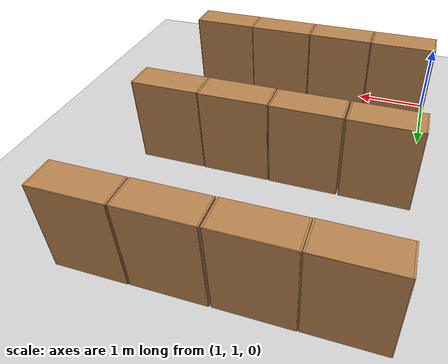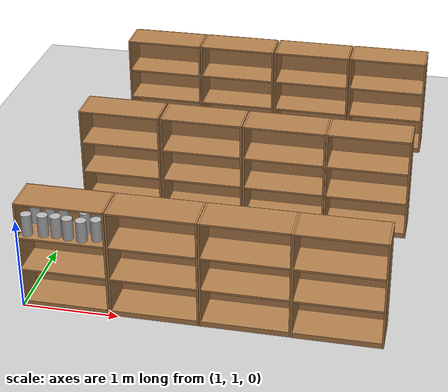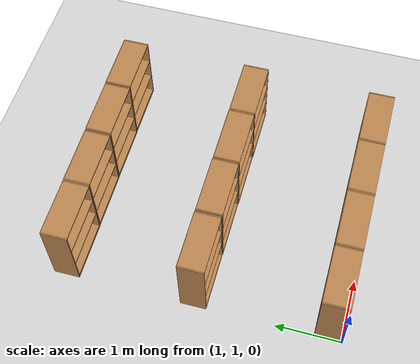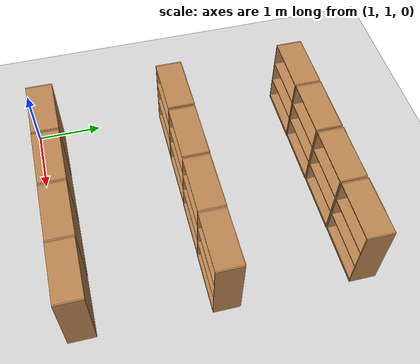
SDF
<sdf version="1.7">
 <world name="default">
  <model name="ground_plane">
   <static>1</static>
   <link name="link">
    <collision name="collision">
     <geometry><plane><normal>0 0 1</normal><size>100 100</size></plane></geometry>
     <surface>
      <contact><collide_bitmask>65535</collide_bitmask></contact>
      <friction><ode><mu>100</mu><mu2>50</mu2></ode></friction>
     </surface>
    </collision>
    <visual name="visual">
     <cast_shadows>0</cast_shadows>
     <geometry><plane><normal>0 0 1</normal><size>100 100</size></plane></geometry>
     <material>
      <script><uri>file://media/materials/scripts/gazebo.material</uri><name>Gazebo/Grey</name></script>
     </material>
    </visual>
   </link>
  </model>
  <model name="bookshelf">
   <static>1</static>
   <link name="link">
    <inertial><mass>1</mass></inertial>
    <collision name="back">
     <pose>0 0.005 0.6 0 -0 0</pose>
     <geometry><box><size>0.9 0.01 1.2</size></box></geometry>
    </collision>
    <visual name="visual1">
     <pose>0 0.005 0.6 0 -0 0</pose>
     <geometry><box><size>0.9 0.01 1.2</size></box></geometry>
     <material>
      <script><uri>file://media/materials/scripts/gazebo.material</uri><name>Gazebo/Wood</name></script>
     </material>
    </visual>
    <collision name="left_side">
     <pose>0.45 -0.195 0.6 0 -0 0</pose>
     <geometry><box><size>0.02 0.4 1.2</size></box></geometry>
    </collision>
    <visual name="visual2">
     <pose>0.45 -0.195 0.6 0 -0 0</pose>
     <geometry><box><size>0.02 0.4 1.2</size></box></geometry>
     <material>
      <script><uri>file://media/materials/scripts/gazebo.material</uri><name>Gazebo/Wood</name></script>
     </material>
    </visual>
    <collision name="right_side">
     <pose>-0.45 -0.195 0.6 0 -0 0</pose>
     <geometry><box><size>0.02 0.4 1.2</size></box></geometry>
    </collision>
    <visual name="visual3">
     <pose>-0.45 -0.195 0.6 0 -0 0</pose>
     <geometry><box><size>0.02 0.4 1.2</size></box></geometry>
     <material>
      <script><uri>file://media/materials/scripts/gazebo.material</uri><name>Gazebo/Wood</name></script>
     </material>
    </visual>
    <collision name="bottom">
     <pose>0 -0.195 0.03 0 -0 0</pose>
     <geometry><box><size>0.88 0.4 0.06</size></box></geometry>
    </collision>
    <visual name="visual4">
     <pose>0 -0.195 0.03 0 -0 0</pose>
     <geometry><box><size>0.88 0.4 0.06</size></box></geometry>
     <material>
      <script><uri>file://media/materials/scripts/gazebo.material</uri><name>Gazebo/Wood</name></script>
     </material>
    </visual>
    <collision name="top">
     <pose>0 -0.195 1.19 0 -0 0</pose>
     <geometry><box><size>0.88 0.4 0.02</size></box></geometry>
    </collision>
    <visual name="visual5">
     <pose>0 -0.195 1.19 0 -0 0</pose>
     <geometry><box><size>0.88 0.4 0.02</size></box></geometry>
     <material>
      <script><uri>file://media/materials/scripts/gazebo.material</uri><name>Gazebo/Wood</name></script>
     </material>
    </visual>
    <collision name="low_shelf">
     <pose>0 -0.195 0.43 0 -0 0</pose>
     <geometry><box><size>0.88 0.4 0.02</size></box></geometry>
    </collision>
    <visual name="visual6">
     <pose>0 -0.195 0.43 0 -0 0</pose>
     <geometry><box><size>0.88 0.4 0.02</size></box></geometry>
     <material>
      <script><uri>file://media/materials/scripts/gazebo.material</uri><name>Gazebo/Wood</name></script>
     </material>
    </visual>
    <collision name="high_shelf">
     <pose>0 -0.195 0.8 0 -0 0</pose>
     <geometry><box><size>0.88 0.4 0.02</size></box></geometry>
    </collision>
    <visual name="visual7">
     <pose>0 -0.195 0.8 0 -0 0</pose>
     <geometry><box><size>0.88 0.4 0.02</size></box></geometry>
     <material>
      <script><uri>file://media/materials/scripts/gazebo.material</uri><name>Gazebo/Wood</name></script>
     </material>
    </visual>
   </link>
   <pose>1.45184 3.43534 0 0 -0 0</pose>
  </model>
  <model name="bookshelf_0">
   <static>1</static>
   <link name="link">
    <inertial><mass>1</mass></inertial>
    <collision name="back">
     <pose>0 0.005 0.6 0 -0 0</pose>
     <geometry><box><size>0.9 0.01 1.2</size></box></geometry>
    </collision>
    <visual name="visual1">
     <pose>0 0.005 0.6 0 -0 0</pose>
     <geometry><box><size>0.9 0.01 1.2</size></box></geometry>
     <material>
      <script><uri>file://media/materials/scripts/gazebo.material</uri><name>Gazebo/Wood</name></script>
     </material>
    </visual>
    <collision name="left_side">
     <pose>0.45 -0.195 0.6 0 -0 0</pose>
     <geometry><box><size>0.02 0.4 1.2</size></box></geometry>
    </collision>
    <visual name="visual2">
     <pose>0.45 -0.195 0.6 0 -0 0</pose>
     <geometry><box><size>0.02 0.4 1.2</size></box></geometry>
     <material>
      <script><uri>file://media/materials/scripts/gazebo.material</uri><name>Gazebo/Wood</name></script>
     </material>
    </visual>
    <collision name="right_side">
     <pose>-0.45 -0.195 0.6 0 -0 0</pose>
     <geometry><box><size>0.02 0.4 1.2</size></box></geometry>
    </collision>
    <visual name="visual3">
     <pose>-0.45 -0.195 0.6 0 -0 0</pose>
     <geometry><box><size>0.02 0.4 1.2</size></box></geometry>
     <material>
      <script><uri>file://media/materials/scripts/gazebo.material</uri><name>Gazebo/Wood</name></script>
     </material>
    </visual>
    <collision name="bottom">
     <pose>0 -0.195 0.03 0 -0 0</pose>
     <geometry><box><size>0.88 0.4 0.06</size></box></geometry>
    </collision>
    <visual name="visual4">
     <pose>0 -0.195 0.03 0 -0 0</pose>
     <geometry><box><size>0.88 0.4 0.06</size></box></geometry>
     <material>
      <script><uri>file://media/materials/scripts/gazebo.material</uri><name>Gazebo/Wood</name></script>
     </material>
    </visual>
    <collision name="top">
     <pose>0 -0.195 1.19 0 -0 0</pose>
     <geometry><box><size>0.88 0.4 0.02</size></box></geometry>
    </collision>
    <visual name="visual5">
     <pose>0 -0.195 1.19 0 -0 0</pose>
     <geometry><box><size>0.88 0.4 0.02</size></box></geometry>
     <material>
      <script><uri>file://media/materials/scripts/gazebo.material</uri><name>Gazebo/Wood</name></script>
     </material>
    </visual>
    <collision name="low_shelf">
     <pose>0 -0.195 0.43 0 -0 0</pose>
     <geometry><box><size>0.88 0.4 0.02</size></box></geometry>
    </collision>
    <visual name="visual6">
     <pose>0 -0.195 0.43 0 -0 0</pose>
     <geometry><box><size>0.88 0.4 0.02</size></box></geometry>
     <material>
      <script><uri>file://media/materials/scripts/gazebo.material</uri><name>Gazebo/Wood</name></script>
     </material>
    </visual>
    <collision name="high_shelf">
     <pose>0 -0.195 0.8 0 -0 0</pose>
     <geometry><box><size>0.88 0.4 0.02</size></box></geometry>
    </collision>
    <visual name="visual7">
     <pose>0 -0.195 0.8 0 -0 0</pose>
     <geometry><box><size>0.88 0.4 0.02</size></box></geometry>
     <material>
      <script><uri>file://media/materials/scripts/gazebo.material</uri><name>Gazebo/Wood</name></script>
     </material>
    </visual>
   </link>
   <pose>2.39092 3.43134 0 0 -0 0</pose>
  </model>
  <model name="bookshelf_1">
   <static>1</static>
   <link name="link">
    <inertial><mass>1</mass></inertial>
    <collision name="back">
     <pose>0 0.005 0.6 0 -0 0</pose>
     <geometry><box><size>0.9 0.01 1.2</size></box></geometry>
    </collision>
    <visual name="visual1">
     <pose>0 0.005 0.6 0 -0 0</pose>
     <geometry><box><size>0.9 0.01 1.2</size></box></geometry>
     <material>
      <script><uri>file://media/materials/scripts/gazebo.material</uri><name>Gazebo/Wood</name></script>
     </material>
    </visual>
    <collision name="left_side">
     <pose>0.45 -0.195 0.6 0 -0 0</pose>
     <geometry><box><size>0.02 0.4 1.2</size></box></geometry>
    </collision>
    <visual name="visual2">
     <pose>0.45 -0.195 0.6 0 -0 0</pose>
     <geometry><box><size>0.02 0.4 1.2</size></box></geometry>
     <material>
      <script><uri>file://media/materials/scripts/gazebo.material</uri><name>Gazebo/Wood</name></script>
     </material>
    </visual>
    <collision name="right_side">
     <pose>-0.45 -0.195 0.6 0 -0 0</pose>
     <geometry><box><size>0.02 0.4 1.2</size></box></geometry>
    </collision>
    <visual name="visual3">
     <pose>-0.45 -0.195 0.6 0 -0 0</pose>
     <geometry><box><size>0.02 0.4 1.2</size></box></geometry>
     <material>
      <script><uri>file://media/materials/scripts/gazebo.material</uri><name>Gazebo/Wood</name></script>
     </material>
    </visual>
    <collision name="bottom">
     <pose>0 -0.195 0.03 0 -0 0</pose>
     <geometry><box><size>0.88 0.4 0.06</size></box></geometry>
    </collision>
    <visual name="visual4">
     <pose>0 -0.195 0.03 0 -0 0</pose>
     <geometry><box><size>0.88 0.4 0.06</size></box></geometry>
     <material>
      <script><uri>file://media/materials/scripts/gazebo.material</uri><name>Gazebo/Wood</name></script>
     </material>
    </visual>
    <collision name="top">
     <pose>0 -0.195 1.19 0 -0 0</pose>
     <geometry><box><size>0.88 0.4 0.02</size></box></geometry>
    </collision>
    <visual name="visual5">
     <pose>0 -0.195 1.19 0 -0 0</pose>
     <geometry><box><size>0.88 0.4 0.02</size></box></geometry>
     <material>
      <script><uri>file://media/materials/scripts/gazebo.material</uri><name>Gazebo/Wood</name></script>
     </material>
    </visual>
    <collision name="low_shelf">
     <pose>0 -0.195 0.43 0 -0 0</pose>
     <geometry><box><size>0.88 0.4 0.02</size></box></geometry>
    </collision>
    <visual name="visual6">
     <pose>0 -0.195 0.43 0 -0 0</pose>
     <geometry><box><size>0.88 0.4 0.02</size></box></geometry>
     <material>
      <script><uri>file://media/materials/scripts/gazebo.material</uri><name>Gazebo/Wood</name></script>
     </material>
    </visual>
    <collision name="high_shelf">
     <pose>0 -0.195 0.8 0 -0 0</pose>
     <geometry><box><size>0.88 0.4 0.02</size></box></geometry>
    </collision>
    <visual name="visual7">
     <pose>0 -0.195 0.8 0 -0 0</pose>
     <geometry><box><size>0.88 0.4 0.02</size></box></geometry>
     <material>
      <script><uri>file://media/materials/scripts/gazebo.material</uri><name>Gazebo/Wood</name></script>
     </material>
    </visual>
   </link>
   <pose>3.31925 3.42546 0 0 -0 0</pose>
  </model>
  <model name="bookshelf_2">
   <static>1</static>
   <link name="link">
    <inertial><mass>1</mass></inertial>
    <collision name="back">
     <pose>0 0.005 0.6 0 -0 0</pose>
     <geometry><box><size>0.9 0.01 1.2</size></box></geometry>
    </collision>
    <visual name="visual1">
     <pose>0 0.005 0.6 0 -0 0</pose>
     <geometry><box><size>0.9 0.01 1.2</size></box></geometry>
     <material>
      <script><uri>file://media/materials/scripts/gazebo.material</uri><name>Gazebo/Wood</name></script>
     </material>
    </visual>
    <collision name="left_side">
     <pose>0.45 -0.195 0.6 0 -0 0</pose>
     <geometry><box><size>0.02 0.4 1.2</size></box></geometry>
    </collision>
    <visual name="visual2">
     <pose>0.45 -0.195 0.6 0 -0 0</pose>
     <geometry><box><size>0.02 0.4 1.2</size></box></geometry>
     <material>
      <script><uri>file://media/materials/scripts/gazebo.material</uri><name>Gazebo/Wood</name></script>
     </material>
    </visual>
    <collision name="right_side">
     <pose>-0.45 -0.195 0.6 0 -0 0</pose>
     <geometry><box><size>0.02 0.4 1.2</size></box></geometry>
    </collision>
    <visual name="visual3">
     <pose>-0.45 -0.195 0.6 0 -0 0</pose>
     <geometry><box><size>0.02 0.4 1.2</size></box></geometry>
     <material>
      <script><uri>file://media/materials/scripts/gazebo.material</uri><name>Gazebo/Wood</name></script>
     </material>
    </visual>
    <collision name="bottom">
     <pose>0 -0.195 0.03 0 -0 0</pose>
     <geometry><box><size>0.88 0.4 0.06</size></box></geometry>
    </collision>
    <visual name="visual4">
     <pose>0 -0.195 0.03 0 -0 0</pose>
     <geometry><box><size>0.88 0.4 0.06</size></box></geometry>
     <material>
      <script><uri>file://media/materials/scripts/gazebo.material</uri><name>Gazebo/Wood</name></script>
     </material>
    </visual>
    <collision name="top">
     <pose>0 -0.195 1.19 0 -0 0</pose>
     <geometry><box><size>0.88 0.4 0.02</size></box></geometry>
    </collision>
    <visual name="visual5">
     <pose>0 -0.195 1.19 0 -0 0</pose>
     <geometry><box><size>0.88 0.4 0.02</size></box></geometry>
     <material>
      <script><uri>file://media/materials/scripts/gazebo.material</uri><name>Gazebo/Wood</name></script>
     </material>
    </visual>
    <collision name="low_shelf">
     <pose>0 -0.195 0.43 0 -0 0</pose>
     <geometry><box><size>0.88 0.4 0.02</size></box></geometry>
    </collision>
    <visual name="visual6">
     <pose>0 -0.195 0.43 0 -0 0</pose>
     <geometry><box><size>0.88 0.4 0.02</size></box></geometry>
     <material>
      <script><uri>file://media/materials/scripts/gazebo.material</uri><name>Gazebo/Wood</name></script>
     </material>
    </visual>
    <collision name="high_shelf">
     <pose>0 -0.195 0.8 0 -0 0</pose>
     <geometry><box><size>0.88 0.4 0.02</size></box></geometry>
    </collision>
    <visual name="visual7">
     <pose>0 -0.195 0.8 0 -0 0</pose>
     <geometry><box><size>0.88 0.4 0.02</size></box></geometry>
     <material>
      <script><uri>file://media/materials/scripts/gazebo.material</uri><name>Gazebo/Wood</name></script>
     </material>
    </visual>
   </link>
   <pose>4.24207 3.42066 0 0 -0 0</pose>
  </model>
  <model name="bookshelf_3">
   <static>1</static>
   <link name="link">
    <inertial><mass>1</mass></inertial>
    <collision name="back">
     <pose>0 0.005 0.6 0 -0 0</pose>
     <geometry><box><size>0.9 0.01 1.2</size></box></geometry>
    </collision>
    <visual name="visual1">
     <pose>0 0.005 0.6 0 -0 0</pose>
     <geometry><box><size>0.9 0.01 1.2</size></box></geometry>
     <material>
      <script><uri>file://media/materials/scripts/gazebo.material</uri><name>Gazebo/Wood</name></script>
     </material>
    </visual>
    <collision name="left_side">
     <pose>0.45 -0.195 0.6 0 -0 0</pose>
     <geometry><box><size>0.02 0.4 1.2</size></box></geometry>
    </collision>
    <visual name="visual2">
     <pose>0.45 -0.195 0.6 0 -0 0</pose>
     <geometry><box><size>0.02 0.4 1.2</size></box></geometry>
     <material>
      <script><uri>file://media/materials/scripts/gazebo.material</uri><name>Gazebo/Wood</name></script>
     </material>
    </visual>
    <collision name="right_side">
     <pose>-0.45 -0.195 0.6 0 -0 0</pose>
     <geometry><box><size>0.02 0.4 1.2</size></box></geometry>
    </collision>
    <visual name="visual3">
     <pose>-0.45 -0.195 0.6 0 -0 0</pose>
     <geometry><box><size>0.02 0.4 1.2</size></box></geometry>
     <material>
      <script><uri>file://media/materials/scripts/gazebo.material</uri><name>Gazebo/Wood</name></script>
     </material>
    </visual>
    <collision name="bottom">
     <pose>0 -0.195 0.03 0 -0 0</pose>
     <geometry><box><size>0.88 0.4 0.06</size></box></geometry>
    </collision>
    <visual name="visual4">
     <pose>0 -0.195 0.03 0 -0 0</pose>
     <geometry><box><size>0.88 0.4 0.06</size></box></geometry>
     <material>
      <script><uri>file://media/materials/scripts/gazebo.material</uri><name>Gazebo/Wood</name></script>
     </material>
    </visual>
    <collision name="top">
     <pose>0 -0.195 1.19 0 -0 0</pose>
     <geometry><box><size>0.88 0.4 0.02</size></box></geometry>
    </collision>
    <visual name="visual5">
     <pose>0 -0.195 1.19 0 -0 0</pose>
     <geometry><box><size>0.88 0.4 0.02</size></box></geometry>
     <material>
      <script><uri>file://media/materials/scripts/gazebo.material</uri><name>Gazebo/Wood</name></script>
     </material>
    </visual>
    <collision name="low_shelf">
     <pose>0 -0.195 0.43 0 -0 0</pose>
     <geometry><box><size>0.88 0.4 0.02</size></box></geometry>
    </collision>
    <visual name="visual6">
     <pose>0 -0.195 0.43 0 -0 0</pose>
     <geometry><box><size>0.88 0.4 0.02</size></box></geometry>
     <material>
      <script><uri>file://media/materials/scripts/gazebo.material</uri><name>Gazebo/Wood</name></script>
     </material>
    </visual>
    <collision name="high_shelf">
     <pose>0 -0.195 0.8 0 -0 0</pose>
     <geometry><box><size>0.88 0.4 0.02</size></box></geometry>
    </collision>
    <visual name="visual7">
     <pose>0 -0.195 0.8 0 -0 0</pose>
     <geometry><box><size>0.88 0.4 0.02</size></box></geometry>
     <material>
      <script><uri>file://media/materials/scripts/gazebo.material</uri><name>Gazebo/Wood</name></script>
     </material>
    </visual>
   </link>
   <pose>1.4441 1.40563 0 -0.000728 0 0</pose>
  </model>
  <model name="bookshelf_4">
   <static>1</static>
   <link name="link">
    <inertial><mass>1</mass></inertial>
    <collision name="back">
     <pose>0 0.005 0.6 0 -0 0</pose>
     <geometry><box><size>0.9 0.01 1.2</size></box></geometry>
    </collision>
    <visual name="visual1">
     <pose>0 0.005 0.6 0 -0 0</pose>
     <geometry><box><size>0.9 0.01 1.2</size></box></geometry>
     <material>
      <script><uri>file://media/materials/scripts/gazebo.material</uri><name>Gazebo/Wood</name></script>
     </material>
    </visual>
    <collision name="left_side">
     <pose>0.45 -0.195 0.6 0 -0 0</pose>
     <geometry><box><size>0.02 0.4 1.2</size></box></geometry>
    </collision>
    <visual name="visual2">
     <pose>0.45 -0.195 0.6 0 -0 0</pose>
     <geometry><box><size>0.02 0.4 1.2</size></box></geometry>
     <material>
      <script><uri>file://media/materials/scripts/gazebo.material</uri><name>Gazebo/Wood</name></script>
     </material>
    </visual>
    <collision name="right_side">
     <pose>-0.45 -0.195 0.6 0 -0 0</pose>
     <geometry><box><size>0.02 0.4 1.2</size></box></geometry>
    </collision>
    <visual name="visual3">
     <pose>-0.45 -0.195 0.6 0 -0 0</pose>
     <geometry><box><size>0.02 0.4 1.2</size></box></geometry>
     <material>
      <script><uri>file://media/materials/scripts/gazebo.material</uri><name>Gazebo/Wood</name></script>
     </material>
    </visual>
    <collision name="bottom">
     <pose>0 -0.195 0.03 0 -0 0</pose>
     <geometry><box><size>0.88 0.4 0.06</size></box></geometry>
    </collision>
    <visual name="visual4">
     <pose>0 -0.195 0.03 0 -0 0</pose>
     <geometry><box><size>0.88 0.4 0.06</size></box></geometry>
     <material>
      <script><uri>file://media/materials/scripts/gazebo.material</uri><name>Gazebo/Wood</name></script>
     </material>
    </visual>
    <collision name="top">
     <pose>0 -0.195 1.19 0 -0 0</pose>
     <geometry><box><size>0.88 0.4 0.02</size></box></geometry>
    </collision>
    <visual name="visual5">
     <pose>0 -0.195 1.19 0 -0 0</pose>
     <geometry><box><size>0.88 0.4 0.02</size></box></geometry>
     <material>
      <script><uri>file://media/materials/scripts/gazebo.material</uri><name>Gazebo/Wood</name></script>
     </material>
    </visual>
    <collision name="low_shelf">
     <pose>0 -0.195 0.43 0 -0 0</pose>
     <geometry><box><size>0.88 0.4 0.02</size></box></geometry>
    </collision>
    <visual name="visual6">
     <pose>0 -0.195 0.43 0 -0 0</pose>
     <geometry><box><size>0.88 0.4 0.02</size></box></geometry>
     <material>
      <script><uri>file://media/materials/scripts/gazebo.material</uri><name>Gazebo/Wood</name></script>
     </material>
    </visual>
    <collision name="high_shelf">
     <pose>0 -0.195 0.8 0 -0 0</pose>
     <geometry><box><size>0.88 0.4 0.02</size></box></geometry>
    </collision>
    <visual name="visual7">
     <pose>0 -0.195 0.8 0 -0 0</pose>
     <geometry><box><size>0.88 0.4 0.02</size></box></geometry>
     <material>
      <script><uri>file://media/materials/scripts/gazebo.material</uri><name>Gazebo/Wood</name></script>
     </material>
    </visual>
   </link>
   <pose>2.36984 1.40261 0 0 -0 0</pose>
  </model>
  <model name="bookshelf_5">
   <static>1</static>
   <link name="link">
    <inertial><mass>1</mass></inertial>
    <collision name="back">
     <pose>0 0.005 0.6 0 -0 0</pose>
     <geometry><box><size>0.9 0.01 1.2</size></box></geometry>
    </collision>
    <visual name="visual1">
     <pose>0 0.005 0.6 0 -0 0</pose>
     <geometry><box><size>0.9 0.01 1.2</size></box></geometry>
     <material>
      <script><uri>file://media/materials/scripts/gazebo.material</uri><name>Gazebo/Wood</name></script>
     </material>
    </visual>
    <collision name="left_side">
     <pose>0.45 -0.195 0.6 0 -0 0</pose>
     <geometry><box><size>0.02 0.4 1.2</size></box></geometry>
    </collision>
    <visual name="visual2">
     <pose>0.45 -0.195 0.6 0 -0 0</pose>
     <geometry><box><size>0.02 0.4 1.2</size></box></geometry>
     <material>
      <script><uri>file://media/materials/scripts/gazebo.material</uri><name>Gazebo/Wood</name></script>
     </material>
    </visual>
    <collision name="right_side">
     <pose>-0.45 -0.195 0.6 0 -0 0</pose>
     <geometry><box><size>0.02 0.4 1.2</size></box></geometry>
    </collision>
    <visual name="visual3">
     <pose>-0.45 -0.195 0.6 0 -0 0</pose>
     <geometry><box><size>0.02 0.4 1.2</size></box></geometry>
     <material>
      <script><uri>file://media/materials/scripts/gazebo.material</uri><name>Gazebo/Wood</name></script>
     </material>
    </visual>
    <collision name="bottom">
     <pose>0 -0.195 0.03 0 -0 0</pose>
     <geometry><box><size>0.88 0.4 0.06</size></box></geometry>
    </collision>
    <visual name="visual4">
     <pose>0 -0.195 0.03 0 -0 0</pose>
     <geometry><box><size>0.88 0.4 0.06</size></box></geometry>
     <material>
      <script><uri>file://media/materials/scripts/gazebo.material</uri><name>Gazebo/Wood</name></script>
     </material>
    </visual>
    <collision name="top">
     <pose>0 -0.195 1.19 0 -0 0</pose>
     <geometry><box><size>0.88 0.4 0.02</size></box></geometry>
    </collision>
    <visual name="visual5">
     <pose>0 -0.195 1.19 0 -0 0</pose>
     <geometry><box><size>0.88 0.4 0.02</size></box></geometry>
     <material>
      <script><uri>file://media/materials/scripts/gazebo.material</uri><name>Gazebo/Wood</name></script>
     </material>
    </visual>
    <collision name="low_shelf">
     <pose>0 -0.195 0.43 0 -0 0</pose>
     <geometry><box><size>0.88 0.4 0.02</size></box></geometry>
    </collision>
    <visual name="visual6">
     <pose>0 -0.195 0.43 0 -0 0</pose>
     <geometry><box><size>0.88 0.4 0.02</size></box></geometry>
     <material>
      <script><uri>file://media/materials/scripts/gazebo.material</uri><name>Gazebo/Wood</name></script>
     </material>
    </visual>
    <collision name="high_shelf">
     <pose>0 -0.195 0.8 0 -0 0</pose>
     <geometry><box><size>0.88 0.4 0.02</size></box></geometry>
    </collision>
    <visual name="visual7">
     <pose>0 -0.195 0.8 0 -0 0</pose>
     <geometry><box><size>0.88 0.4 0.02</size></box></geometry>
     <material>
      <script><uri>file://media/materials/scripts/gazebo.material</uri><name>Gazebo/Wood</name></script>
     </material>
    </visual>
   </link>
   <pose>3.29308 1.40142 0 0 -0 0</pose>
  </model>
  <model name="bookshelf_6">
   <static>1</static>
   <link name="link">
    <inertial><mass>1</mass></inertial>
    <collision name="back">
     <pose>0 0.005 0.6 0 -0 0</pose>
     <geometry><box><size>0.9 0.01 1.2</size></box></geometry>
    </collision>
    <visual name="visual1">
     <pose>0 0.005 0.6 0 -0 0</pose>
     <geometry><box><size>0.9 0.01 1.2</size></box></geometry>
     <material>
      <script><uri>file://media/materials/scripts/gazebo.material</uri><name>Gazebo/Wood</name></script>
     </material>
    </visual>
    <collision name="left_side">
     <pose>0.45 -0.195 0.6 0 -0 0</pose>
     <geometry><box><size>0.02 0.4 1.2</size></box></geometry>
    </collision>
    <visual name="visual2">
     <pose>0.45 -0.195 0.6 0 -0 0</pose>
     <geometry><box><size>0.02 0.4 1.2</size></box></geometry>
     <material>
      <script><uri>file://media/materials/scripts/gazebo.material</uri><name>Gazebo/Wood</name></script>
     </material>
    </visual>
    <collision name="right_side">
     <pose>-0.45 -0.195 0.6 0 -0 0</pose>
     <geometry><box><size>0.02 0.4 1.2</size></box></geometry>
    </collision>
    <visual name="visual3">
     <pose>-0.45 -0.195 0.6 0 -0 0</pose>
     <geometry><box><size>0.02 0.4 1.2</size></box></geometry>
     <material>
      <script><uri>file://media/materials/scripts/gazebo.material</uri><name>Gazebo/Wood</name></script>
     </material>
    </visual>
    <collision name="bottom">
     <pose>0 -0.195 0.03 0 -0 0</pose>
     <geometry><box><size>0.88 0.4 0.06</size></box></geometry>
    </collision>
    <visual name="visual4">
     <pose>0 -0.195 0.03 0 -0 0</pose>
     <geometry><box><size>0.88 0.4 0.06</size></box></geometry>
     <material>
      <script><uri>file://media/materials/scripts/gazebo.material</uri><name>Gazebo/Wood</name></script>
     </material>
    </visual>
    <collision name="top">
     <pose>0 -0.195 1.19 0 -0 0</pose>
     <geometry><box><size>0.88 0.4 0.02</size></box></geometry>
    </collision>
    <visual name="visual5">
     <pose>0 -0.195 1.19 0 -0 0</pose>
     <geometry><box><size>0.88 0.4 0.02</size></box></geometry>
     <material>
      <script><uri>file://media/materials/scripts/gazebo.material</uri><name>Gazebo/Wood</name></script>
     </material>
    </visual>
    <collision name="low_shelf">
     <pose>0 -0.195 0.43 0 -0 0</pose>
     <geometry><box><size>0.88 0.4 0.02</size></box></geometry>
    </collision>
    <visual name="visual6">
     <pose>0 -0.195 0.43 0 -0 0</pose>
     <geometry><box><size>0.88 0.4 0.02</size></box></geometry>
     <material>
      <script><uri>file://media/materials/scripts/gazebo.material</uri><name>Gazebo/Wood</name></script>
     </material>
    </visual>
    <collision name="high_shelf">
     <pose>0 -0.195 0.8 0 -0 0</pose>
     <geometry><box><size>0.88 0.4 0.02</size></box></geometry>
    </collision>
    <visual name="visual7">
     <pose>0 -0.195 0.8 0 -0 0</pose>
     <geometry><box><size>0.88 0.4 0.02</size></box></geometry>
     <material>
      <script><uri>file://media/materials/scripts/gazebo.material</uri><name>Gazebo/Wood</name></script>
     </material>
    </visual>
   </link>
   <pose>4.20808 1.39756 0 0 -0 0</pose>
  </model>
  <model name="beer">
   <link name="link">
    <pose>0 0 0.115 0 -0 0</pose>
    <inertial>
     <mass>0.39</mass>
     <inertia><ixx>0.00058</ixx><ixy>0</ixy><ixz>0</ixz><iyy>0.00058</iyy><iyz>0</iyz><izz>0.00019</izz></inertia>
    </inertial>
    <collision name="collision">
     <geometry><cylinder><radius>0.055</radius><length>0.23</length></cylinder></geometry>
    </collision>
    <visual name="visual">
     <geometry><cylinder><radius>0.055</radius><length>0.23</length></cylinder></geometry>
     <material>
      <script>
       <uri>model://beer/materials/scripts</uri>
       <uri>model://beer/materials/textures</uri>
       <name>Beer/Diffuse</name>
      </script>
     </material>
    </visual>
   </link>
   <pose>1.07644 1.3497 0.810032 -0.000731 -1e-05 0.001882</pose>
  </model>
  <model name="beer_0">
   <link name="link">
    <pose>0 0 0.115 0 -0 0</pose>
    <inertial>
     <mass>0.39</mass>
     <inertia><ixx>0.00058</ixx><ixy>0</ixy><ixz>0</ixz><iyy>0.00058</iyy><iyz>0</iyz><izz>0.00019</izz></inertia>
    </inertial>
    <collision name="collision">
     <geometry><cylinder><radius>0.055</radius><length>0.23</length></cylinder></geometry>
    </collision>
    <visual name="visual">
     <geometry><cylinder><radius>0.055</radius><length>0.23</length></cylinder></geometry>
     <material>
      <script>
       <uri>model://beer/materials/scripts</uri>
       <uri>model://beer/materials/textures</uri>
       <name>Beer/Diffuse</name>
      </script>
     </material>
    </visual>
   </link>
   <pose>1.07637 1.09987 0.810226 -0.00078 -3e-06 0.001772</pose>
  </model>
  <model name="beer_1">
   <link name="link">
    <pose>0 0 0.115 0 -0 0</pose>
    <inertial>
     <mass>0.39</mass>
     <inertia><ixx>0.00058</ixx><ixy>0</ixy><ixz>0</ixz><iyy>0.00058</iyy><iyz>0</iyz><izz>0.00019</izz></inertia>
    </inertial>
    <collision name="collision">
     <geometry><cylinder><radius>0.055</radius><length>0.23</length></cylinder></geometry>
    </collision>
    <visual name="visual">
     <geometry><cylinder><radius>0.055</radius><length>0.23</length></cylinder></geometry>
     <material>
      <script>
       <uri>model://beer/materials/scripts</uri>
       <uri>model://beer/materials/textures</uri>
       <name>Beer/Diffuse</name>
      </script>
     </material>
    </visual>
   </link>
   <pose>1.23236 1.33918 0.810039 -0.000739 -2e-06 0.001984</pose>
  </model>
  <model name="beer_2">
   <link name="link">
    <pose>0 0 0.115 0 -0 0</pose>
    <inertial>
     <mass>0.39</mass>
     <inertia><ixx>0.00058</ixx><ixy>0</ixy><ixz>0</ixz><iyy>0.00058</iyy><iyz>0</iyz><izz>0.00019</izz></inertia>
    </inertial>
    <collision name="collision">
     <geometry><cylinder><radius>0.055</radius><length>0.23</length></cylinder></geometry>
    </collision>
    <visual name="visual">
     <geometry><cylinder><radius>0.055</radius><length>0.23</length></cylinder></geometry>
     <material>
      <script>
       <uri>model://beer/materials/scripts</uri>
       <uri>model://beer/materials/textures</uri>
       <name>Beer/Diffuse</name>
      </script>
     </material>
    </visual>
   </link>
   <pose>1.24062 1.1132 0.810215 -0.000755 0 0.001012</pose>
  </model>
  <model name="beer_3">
   <link name="link">
    <pose>0 0 0.115 0 -0 0</pose>
    <inertial>
     <mass>0.39</mass>
     <inertia><ixx>0.00058</ixx><ixy>0</ixy><ixz>0</ixz><iyy>0.00058</iyy><iyz>0</iyz><izz>0.00019</izz></inertia>
    </inertial>
    <collision name="collision">
     <geometry><cylinder><radius>0.055</radius><length>0.23</length></cylinder></geometry>
    </collision>
    <visual name="visual">
     <geometry><cylinder><radius>0.055</radius><length>0.23</length></cylinder></geometry>
     <material>
      <script>
       <uri>model://beer/materials/scripts</uri>
       <uri>model://beer/materials/textures</uri>
       <name>Beer/Diffuse</name>
      </script>
     </material>
    </visual>
   </link>
   <pose>1.37254 1.34323 0.810046 -0.000727 1e-06 0.00156</pose>
  </model>
  <model name="beer_4">
   <link name="link">
    <pose>0 0 0.115 0 -0 0</pose>
    <inertial>
     <mass>0.39</mass>
     <inertia><ixx>0.00058</ixx><ixy>0</ixy><ixz>0</ixz><iyy>0.00058</iyy><iyz>0</iyz><izz>0.00019</izz></inertia>
    </inertial>
    <collision name="collision">
     <geometry><cylinder><radius>0.055</radius><length>0.23</length></cylinder></geometry>
    </collision>
    <visual name="visual">
     <geometry><cylinder><radius>0.055</radius><length>0.23</length></cylinder></geometry>
     <material>
      <script>
       <uri>model://beer/materials/scripts</uri>
       <uri>model://beer/materials/textures</uri>
       <name>Beer/Diffuse</name>
      </script>
     </material>
    </visual>
   </link>
   <pose>1.37423 1.12022 0.810213 -0.000824 -4e-06 0.00107</pose>
  </model>
  <model name="beer_7">
   <link name="link">
    <pose>0 0 0.115 0 -0 0</pose>
    <inertial>
     <mass>0.39</mass>
     <inertia><ixx>0.00058</ixx><ixy>0</ixy><ixz>0</ixz><iyy>0.00058</iyy><iyz>0</iyz><izz>0.00019</izz></inertia>
    </inertial>
    <collision name="collision">
     <geometry><cylinder><radius>0.055</radius><length>0.23</length></cylinder></geometry>
    </collision>
    <visual name="visual">
     <geometry><cylinder><radius>0.055</radius><length>0.23</length></cylinder></geometry>
     <material>
      <script>
       <uri>model://beer/materials/scripts</uri>
       <uri>model://beer/materials/textures</uri>
       <name>Beer/Diffuse</name>
      </script>
     </material>
    </visual>
   </link>
   <pose>1.63489 1.24799 0.81012 -0.000824 -2e-06 0.002456</pose>
  </model>
  <model name="beer_8">
   <link name="link">
    <pose>0 0 0.115 0 -0 0</pose>
    <inertial>
     <mass>0.39</mass>
     <inertia><ixx>0.00058</ixx><ixy>0</ixy><ixz>0</ixz><iyy>0.00058</iyy><iyz>0</iyz><izz>0.00019</izz></inertia>
    </inertial>
    <collision name="collision">
     <geometry><cylinder><radius>0.055</radius><length>0.23</length></cylinder></geometry>
    </collision>
    <visual name="visual">
     <geometry><cylinder><radius>0.055</radius><length>0.23</length></cylinder></geometry>
     <material>
      <script>
       <uri>model://beer/materials/scripts</uri>
       <uri>model://beer/materials/textures</uri>
       <name>Beer/Diffuse</name>
      </script>
     </material>
    </visual>
   </link>
   <pose>1.64383 1.09075 0.810223 -0.000786 -0 6.7e-05</pose>
  </model>
  <model name="beer_9">
   <link name="link">
    <pose>0 0 0.115 0 -0 0</pose>
    <inertial>
     <mass>0.39</mass>
     <inertia><ixx>0.00058</ixx><ixy>0</ixy><ixz>0</ixz><iyy>0.00058</iyy><iyz>0</iyz><izz>0.00019</izz></inertia>
    </inertial>
    <collision name="collision">
     <geometry><cylinder><radius>0.055</radius><length>0.23</length></cylinder></geometry>
    </collision>
    <visual name="visual">
     <geometry><cylinder><radius>0.055</radius><length>0.23</length></cylinder></geometry>
     <material>
      <script>
       <uri>model://beer/materials/scripts</uri>
       <uri>model://beer/materials/textures</uri>
       <name>Beer/Diffuse</name>
      </script>
     </material>
    </visual>
   </link>
   <pose>1.79747 1.34026 0.810053 -0.000821 5e-06 0.003795</pose>
  </model>
  <model name="beer_10">
   <link name="link">
    <pose>0 0 0.115 0 -0 0</pose>
    <inertial>
     <mass>0.39</mass>
     <inertia><ixx>0.00058</ixx><ixy>0</ixy><ixz>0</ixz><iyy>0.00058</iyy><iyz>0</iyz><izz>0.00019</izz></inertia>
    </inertial>
    <collision name="collision">
     <geometry><cylinder><radius>0.055</radius><length>0.23</length></cylinder></geometry>
    </collision>
    <visual name="visual">
     <geometry><cylinder><radius>0.055</radius><length>0.23</length></cylinder></geometry>
     <material>
      <script>
       <uri>model://beer/materials/scripts</uri>
       <uri>model://beer/materials/textures</uri>
       <name>Beer/Diffuse</name>
      </script>
     </material>
    </visual>
   </link>
   <pose>1.78444 1.13593 0.8102 -0.000788 -2e-06 -0.000194</pose>
  </model>
  <model name="beer_5">
   <link name="link">
    <pose>0 0 0.115 0 -0 0</pose>
    <inertial>
     <mass>0.39</mass>
     <inertia><ixx>0.00058</ixx><ixy>0</ixy><ixz>0</ixz><iyy>0.00058</iyy><iyz>0</iyz><izz>0.00019</izz></inertia>
    </inertial>
    <collision name="collision">
     <geometry><cylinder><radius>0.055</radius><length>0.23</length></cylinder></geometry>
    </collision>
    <visual name="visual">
     <geometry><cylinder><radius>0.055</radius><length>0.23</length></cylinder></geometry>
     <material>
      <script>
       <uri>model://beer/materials/scripts</uri>
       <uri>model://beer/materials/textures</uri>
       <name>Beer/Diffuse</name>
      </script>
     </material>
    </visual>
   </link>
   <pose>1.5002 1.10253 0.810224 -0.000786 -3e-06 0.000126</pose>
  </model>
  <model name="bookshelf_7">
   <static>1</static>
   <link name="link">
    <inertial><mass>1</mass></inertial>
    <collision name="back">
     <pose>0 0.005 0.6 0 -0 0</pose>
     <geometry><box><size>0.9 0.01 1.2</size></box></geometry>
    </collision>
    <visual name="visual1">
     <pose>0 0.005 0.6 0 -0 0</pose>
     <geometry><box><size>0.9 0.01 1.2</size></box></geometry>
     <material>
      <script><uri>file://media/materials/scripts/gazebo.material</uri><name>Gazebo/Wood</name></script>
     </material>
    </visual>
    <collision name="left_side">
     <pose>0.45 -0.195 0.6 0 -0 0</pose>
     <geometry><box><size>0.02 0.4 1.2</size></box></geometry>
    </collision>
    <visual name="visual2">
     <pose>0.45 -0.195 0.6 0 -0 0</pose>
     <geometry><box><size>0.02 0.4 1.2</size></box></geometry>
     <material>
      <script><uri>file://media/materials/scripts/gazebo.material</uri><name>Gazebo/Wood</name></script>
     </material>
    </visual>
    <collision name="right_side">
     <pose>-0.45 -0.195 0.6 0 -0 0</pose>
     <geometry><box><size>0.02 0.4 1.2</size></box></geometry>
    </collision>
    <visual name="visual3">
     <pose>-0.45 -0.195 0.6 0 -0 0</pose>
     <geometry><box><size>0.02 0.4 1.2</size></box></geometry>
     <material>
      <script><uri>file://media/materials/scripts/gazebo.material</uri><name>Gazebo/Wood</name></script>
     </material>
    </visual>
    <collision name="bottom">
     <pose>0 -0.195 0.03 0 -0 0</pose>
     <geometry><box><size>0.88 0.4 0.06</size></box></geometry>
    </collision>
    <visual name="visual4">
     <pose>0 -0.195 0.03 0 -0 0</pose>
     <geometry><box><size>0.88 0.4 0.06</size></box></geometry>
     <material>
      <script><uri>file://media/materials/scripts/gazebo.material</uri><name>Gazebo/Wood</name></script>
     </material>
    </visual>
    <collision name="top">
     <pose>0 -0.195 1.19 0 -0 0</pose>
     <geometry><box><size>0.88 0.4 0.02</size></box></geometry>
    </collision>
    <visual name="visual5">
     <pose>0 -0.195 1.19 0 -0 0</pose>
     <geometry><box><size>0.88 0.4 0.02</size></box></geometry>
     <material>
      <script><uri>file://media/materials/scripts/gazebo.material</uri><name>Gazebo/Wood</name></script>
     </material>
    </visual>
    <collision name="low_shelf">
     <pose>0 -0.195 0.43 0 -0 0</pose>
     <geometry><box><size>0.88 0.4 0.02</size></box></geometry>
    </collision>
    <visual name="visual6">
     <pose>0 -0.195 0.43 0 -0 0</pose>
     <geometry><box><size>0.88 0.4 0.02</size></box></geometry>
     <material>
      <script><uri>file://media/materials/scripts/gazebo.material</uri><name>Gazebo/Wood</name></script>
     </material>
    </visual>
    <collision name="high_shelf">
     <pose>0 -0.195 0.8 0 -0 0</pose>
     <geometry><box><size>0.88 0.4 0.02</size></box></geometry>
    </collision>
    <visual name="visual7">
     <pose>0 -0.195 0.8 0 -0 0</pose>
     <geometry><box><size>0.88 0.4 0.02</size></box></geometry>
     <material>
      <script><uri>file://media/materials/scripts/gazebo.material</uri><name>Gazebo/Wood</name></script>
     </material>
    </visual>
   </link>
   <pose>1.45548 5.42474 0 0 -0 0</pose>
  </model>
  <model name="bookshelf_8">
   <static>1</static>
   <link name="link">
    <inertial><mass>1</mass></inertial>
    <collision name="back">
     <pose>0 0.005 0.6 0 -0 0</pose>
     <geometry><box><size>0.9 0.01 1.2</size></box></geometry>
    </collision>
    <visual name="visual1">
     <pose>0 0.005 0.6 0 -0 0</pose>
     <geometry><box><size>0.9 0.01 1.2</size></box></geometry>
     <material>
      <script><uri>file://media/materials/scripts/gazebo.material</uri><name>Gazebo/Wood</name></script>
     </material>
    </visual>
    <collision name="left_side">
     <pose>0.45 -0.195 0.6 0 -0 0</pose>
     <geometry><box><size>0.02 0.4 1.2</size></box></geometry>
    </collision>
    <visual name="visual2">
     <pose>0.45 -0.195 0.6 0 -0 0</pose>
     <geometry><box><size>0.02 0.4 1.2</size></box></geometry>
     <material>
      <script><uri>file://media/materials/scripts/gazebo.material</uri><name>Gazebo/Wood</name></script>
     </material>
    </visual>
    <collision name="right_side">
     <pose>-0.45 -0.195 0.6 0 -0 0</pose>
     <geometry><box><size>0.02 0.4 1.2</size></box></geometry>
    </collision>
    <visual name="visual3">
     <pose>-0.45 -0.195 0.6 0 -0 0</pose>
     <geometry><box><size>0.02 0.4 1.2</size></box></geometry>
     <material>
      <script><uri>file://media/materials/scripts/gazebo.material</uri><name>Gazebo/Wood</name></script>
     </material>
    </visual>
    <collision name="bottom">
     <pose>0 -0.195 0.03 0 -0 0</pose>
     <geometry><box><size>0.88 0.4 0.06</size></box></geometry>
    </collision>
    <visual name="visual4">
     <pose>0 -0.195 0.03 0 -0 0</pose>
     <geometry><box><size>0.88 0.4 0.06</size></box></geometry>
     <material>
      <script><uri>file://media/materials/scripts/gazebo.material</uri><name>Gazebo/Wood</name></script>
     </material>
    </visual>
    <collision name="top">
     <pose>0 -0.195 1.19 0 -0 0</pose>
     <geometry><box><size>0.88 0.4 0.02</size></box></geometry>
    </collision>
    <visual name="visual5">
     <pose>0 -0.195 1.19 0 -0 0</pose>
     <geometry><box><size>0.88 0.4 0.02</size></box></geometry>
     <material>
      <script><uri>file://media/materials/scripts/gazebo.material</uri><name>Gazebo/Wood</name></script>
     </material>
    </visual>
    <collision name="low_shelf">
     <pose>0 -0.195 0.43 0 -0 0</pose>
     <geometry><box><size>0.88 0.4 0.02</size></box></geometry>
    </collision>
    <visual name="visual6">
     <pose>0 -0.195 0.43 0 -0 0</pose>
     <geometry><box><size>0.88 0.4 0.02</size></box></geometry>
     <material>
      <script><uri>file://media/materials/scripts/gazebo.material</uri><name>Gazebo/Wood</name></script>
     </material>
    </visual>
    <collision name="high_shelf">
     <pose>0 -0.195 0.8 0 -0 0</pose>
     <geometry><box><size>0.88 0.4 0.02</size></box></geometry>
    </collision>
    <visual name="visual7">
     <pose>0 -0.195 0.8 0 -0 0</pose>
     <geometry><box><size>0.88 0.4 0.02</size></box></geometry>
     <material>
      <script><uri>file://media/materials/scripts/gazebo.material</uri><name>Gazebo/Wood</name></script>
     </material>
    </visual>
   </link>
   <pose>2.38025 5.42877 0 0 -0 0</pose>
  </model>
  <model name="bookshelf_9">
   <static>1</static>
   <link name="link">
    <inertial><mass>1</mass></inertial>
    <collision name="back">
     <pose>0 0.005 0.6 0 -0 0</pose>
     <geometry><box><size>0.9 0.01 1.2</size></box></geometry>
    </collision>
    <visual name="visual1">
     <pose>0 0.005 0.6 0 -0 0</pose>
     <geometry><box><size>0.9 0.01 1.2</size></box></geometry>
     <material>
      <script><uri>file://media/materials/scripts/gazebo.material</uri><name>Gazebo/Wood</name></script>
     </material>
    </visual>
    <collision name="left_side">
     <pose>0.45 -0.195 0.6 0 -0 0</pose>
     <geometry><box><size>0.02 0.4 1.2</size></box></geometry>
    </collision>
    <visual name="visual2">
     <pose>0.45 -0.195 0.6 0 -0 0</pose>
     <geometry><box><size>0.02 0.4 1.2</size></box></geometry>
     <material>
      <script><uri>file://media/materials/scripts/gazebo.material</uri><name>Gazebo/Wood</name></script>
     </material>
    </visual>
    <collision name="right_side">
     <pose>-0.45 -0.195 0.6 0 -0 0</pose>
     <geometry><box><size>0.02 0.4 1.2</size></box></geometry>
    </collision>
    <visual name="visual3">
     <pose>-0.45 -0.195 0.6 0 -0 0</pose>
     <geometry><box><size>0.02 0.4 1.2</size></box></geometry>
     <material>
      <script><uri>file://media/materials/scripts/gazebo.material</uri><name>Gazebo/Wood</name></script>
     </material>
    </visual>
    <collision name="bottom">
     <pose>0 -0.195 0.03 0 -0 0</pose>
     <geometry><box><size>0.88 0.4 0.06</size></box></geometry>
    </collision>
    <visual name="visual4">
     <pose>0 -0.195 0.03 0 -0 0</pose>
     <geometry><box><size>0.88 0.4 0.06</size></box></geometry>
     <material>
      <script><uri>file://media/materials/scripts/gazebo.material</uri><name>Gazebo/Wood</name></script>
     </material>
    </visual>
    <collision name="top">
     <pose>0 -0.195 1.19 0 -0 0</pose>
     <geometry><box><size>0.88 0.4 0.02</size></box></geometry>
    </collision>
    <visual name="visual5">
     <pose>0 -0.195 1.19 0 -0 0</pose>
     <geometry><box><size>0.88 0.4 0.02</size></box></geometry>
     <material>
      <script><uri>file://media/materials/scripts/gazebo.material</uri><name>Gazebo/Wood</name></script>
     </material>
    </visual>
    <collision name="low_shelf">
     <pose>0 -0.195 0.43 0 -0 0</pose>
     <geometry><box><size>0.88 0.4 0.02</size></box></geometry>
    </collision>
    <visual name="visual6">
     <pose>0 -0.195 0.43 0 -0 0</pose>
     <geometry><box><size>0.88 0.4 0.02</size></box></geometry>
     <material>
      <script><uri>file://media/materials/scripts/gazebo.material</uri><name>Gazebo/Wood</name></script>
     </material>
    </visual>
    <collision name="high_shelf">
     <pose>0 -0.195 0.8 0 -0 0</pose>
     <geometry><box><size>0.88 0.4 0.02</size></box></geometry>
    </collision>
    <visual name="visual7">
     <pose>0 -0.195 0.8 0 -0 0</pose>
     <geometry><box><size>0.88 0.4 0.02</size></box></geometry>
     <material>
      <script><uri>file://media/materials/scripts/gazebo.material</uri><name>Gazebo/Wood</name></script>
     </material>
    </visual>
   </link>
   <pose>3.31719 5.43237 0 0 -0 0</pose>
  </model>
  <model name="bookshelf_10">
   <static>1</static>
   <link name="link">
    <inertial><mass>1</mass></inertial>
    <collision name="back">
     <pose>0 0.005 0.6 0 -0 0</pose>
     <geometry><box><size>0.9 0.01 1.2</size></box></geometry>
    </collision>
    <visual name="visual1">
     <pose>0 0.005 0.6 0 -0 0</pose>
     <geometry><box><size>0.9 0.01 1.2</size></box></geometry>
     <material>
      <script><uri>file://media/materials/scripts/gazebo.material</uri><name>Gazebo/Wood</name></script>
     </material>
    </visual>
    <collision name="left_side">
     <pose>0.45 -0.195 0.6 0 -0 0</pose>
     <geometry><box><size>0.02 0.4 1.2</size></box></geometry>
    </collision>
    <visual name="visual2">
     <pose>0.45 -0.195 0.6 0 -0 0</pose>
     <geometry><box><size>0.02 0.4 1.2</size></box></geometry>
     <material>
      <script><uri>file://media/materials/scripts/gazebo.material</uri><name>Gazebo/Wood</name></script>
     </material>
    </visual>
    <collision name="right_side">
     <pose>-0.45 -0.195 0.6 0 -0 0</pose>
     <geometry><box><size>0.02 0.4 1.2</size></box></geometry>
    </collision>
    <visual name="visual3">
     <pose>-0.45 -0.195 0.6 0 -0 0</pose>
     <geometry><box><size>0.02 0.4 1.2</size></box></geometry>
     <material>
      <script><uri>file://media/materials/scripts/gazebo.material</uri><name>Gazebo/Wood</name></script>
     </material>
    </visual>
    <collision name="bottom">
     <pose>0 -0.195 0.03 0 -0 0</pose>
     <geometry><box><size>0.88 0.4 0.06</size></box></geometry>
    </collision>
    <visual name="visual4">
     <pose>0 -0.195 0.03 0 -0 0</pose>
     <geometry><box><size>0.88 0.4 0.06</size></box></geometry>
     <material>
      <script><uri>file://media/materials/scripts/gazebo.material</uri><name>Gazebo/Wood</name></script>
     </material>
    </visual>
    <collision name="top">
     <pose>0 -0.195 1.19 0 -0 0</pose>
     <geometry><box><size>0.88 0.4 0.02</size></box></geometry>
    </collision>
    <visual name="visual5">
     <pose>0 -0.195 1.19 0 -0 0</pose>
     <geometry><box><size>0.88 0.4 0.02</size></box></geometry>
     <material>
      <script><uri>file://media/materials/scripts/gazebo.material</uri><name>Gazebo/Wood</name></script>
     </material>
    </visual>
    <collision name="low_shelf">
     <pose>0 -0.195 0.43 0 -0 0</pose>
     <geometry><box><size>0.88 0.4 0.02</size></box></geometry>
    </collision>
    <visual name="visual6">
     <pose>0 -0.195 0.43 0 -0 0</pose>
     <geometry><box><size>0.88 0.4 0.02</size></box></geometry>
     <material>
      <script><uri>file://media/materials/scripts/gazebo.material</uri><name>Gazebo/Wood</name></script>
     </material>
    </visual>
    <collision name="high_shelf">
     <pose>0 -0.195 0.8 0 -0 0</pose>
     <geometry><box><size>0.88 0.4 0.02</size></box></geometry>
    </collision>
    <visual name="visual7">
     <pose>0 -0.195 0.8 0 -0 0</pose>
     <geometry><box><size>0.88 0.4 0.02</size></box></geometry>
     <material>
      <script><uri>file://media/materials/scripts/gazebo.material</uri><name>Gazebo/Wood</name></script>
     </material>
    </visual>
   </link>
   <pose>4.24822 5.43713 0 0 -0 0</pose>
  </model>
 </world>
</sdf>
